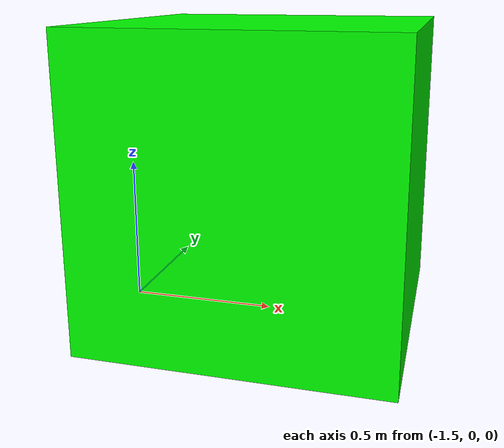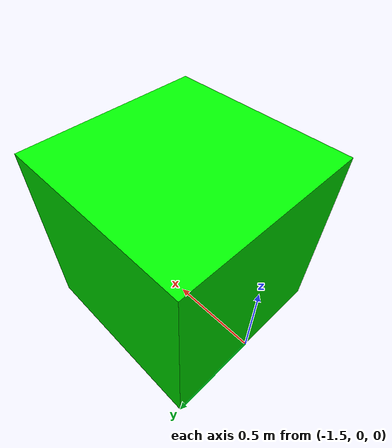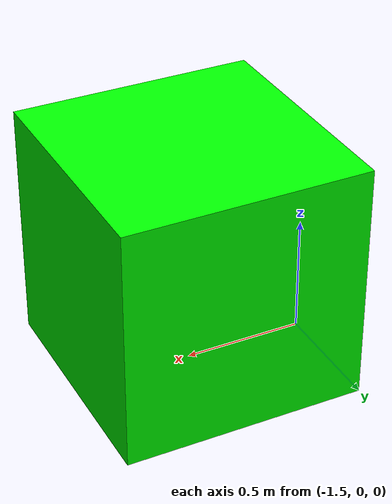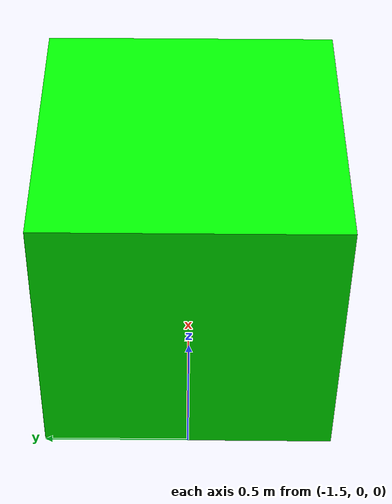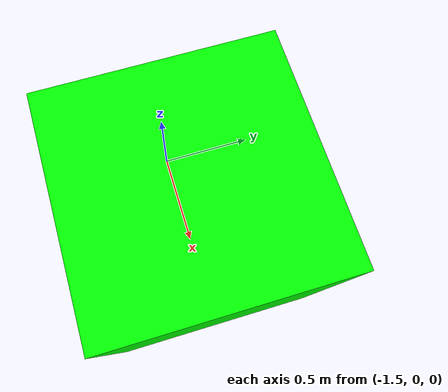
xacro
<?xml version="1.0" encoding="utf-8"?>
<robot xmlns:xacro="http://ros.org/wiki/xacro" name="box2">

  <!-- Define the first box -->
  <gazebo>
    <plugin name="gazebo_ros_control" filename="libgazebo_ros_control.so">
      <robotNamespace>/box2</robotNamespace>
      <robotSimType>gazebo_ros_control/DefaultRobotHWSim</robotSimType>
    </plugin>
  </gazebo>

  <!-- Define the second box -->
  <xacro:property name="box2_x" value="-1.0"/>
  <xacro:property name="box2_y" value="0.0"/>
  <xacro:property name="box2_z" value="0.5"/>

  <link name="world" />

  <link name="box2_link">
    <visual>
      <origin xyz="${box2_x} ${box2_y} ${box2_z}" rpy="0 0 0"/>
      <geometry>
        <box size="1 1 1"/>
      </geometry>
      <material name="green">
        <color rgba="0.0 1.0 0.0 1.0"/>
      </material>
    </visual>
    <inertial>
      <origin xyz="${box2_x} ${box2_y} ${box2_z}" rpy="0 0 0"/>
      <mass value="0.01"/>
      <inertia
	  ixx="0.0" ixy="0.0" ixz="0.0"
	  iyy="0.0" iyz="0.0"
	  izz="0.0"/>
    </inertial>
  </link>
  <joint name="box2_joint" type="fixed">
    <parent link="world"/>
    <child link="box2_link"/>
  </joint>

</robot>
